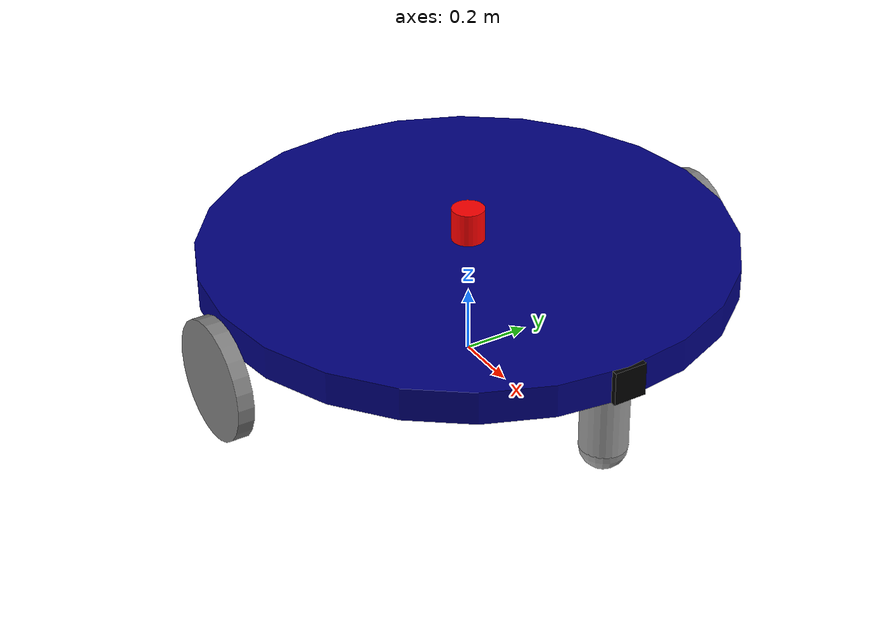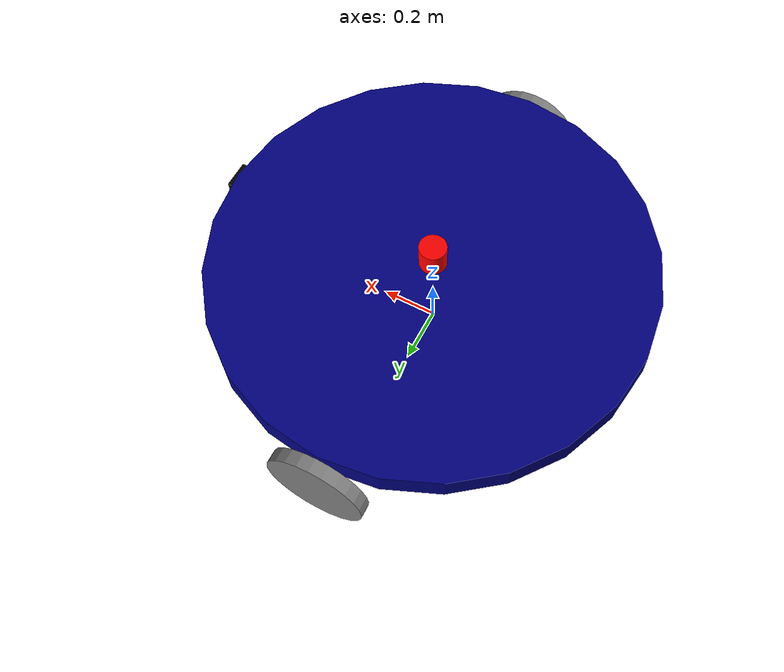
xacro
<?xml version="1.0"?>
<robot name="vanilla_bot" xmlns:xacro="http://www.ros.org/wiki/xacro">

    <xacro:include filename="$(find robot_descriptions)/urdf/common_parameters.xacro" />
    <xacro:include filename="$(find robot_descriptions)/urdf/plugins/imu.xacro" />
    <xacro:include filename="$(find robot_descriptions)/urdf/plugins/camera.xacro" />
    <xacro:include filename="$(find robot_descriptions)/urdf/plugins/laser.xacro" />
    <xacro:include filename="$(find robot_descriptions)/urdf/plugins/diff_drive.xacro" />
    <xacro:include filename="vanilla_bot_base.xacro" />

</robot>

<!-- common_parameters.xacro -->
<robot xmlns:xacro="http://www.ros.org/wiki/xacro">

    <material name="Blue">
        <color rgba="0.0 0.0 0.5 1" />
    </material>

    <material name="Grey">
        <color rgba="0.5 0.5 0.5 1" />
    </material>

    <material name="Orange">
        <color rgba="1.0 0.5 0.0 1" />
    </material>

    <material name="Yellow">
        <color rgba="1.0 1.0 0.0 1" />
    </material>

    <material name="Red">
        <color rgba="1.0 0.0 0.0 1" />
    </material>

    <material name="Black">
        <color rgba="0.0 0.0 0.0 1" />
    </material>

    <xacro:macro name="box_inertia" params="mass length width height xyz rpy">
        <inertial>
            <origin xyz="${xyz}" rpy="${rpy}" />
            <mass value="${mass}" />
            <inertia ixx="${(mass/12) * (height * height + length * length)}" ixy="0" ixz="0"
                     iyy="${(mass/12) * (width * width + length * length)}" iyz="0"
                     izz="${(mass/12) * (width * width + height * height)}" />
        </inertial>
    </xacro:macro>

    <xacro:macro name="cylinder_inertia" params="mass radius height xyz rpy">
        <inertial>
            <origin xyz="${xyz}" rpy="${rpy}" />
            <mass value="${mass}" />
            <inertia ixx="${(mass/12) * (3 * radius * radius + height * height)}" ixy="0" ixz="0"
                     iyy="${(mass/12) * (3 * radius * radius + height * height)}" iyz="0"
                     izz="${(mass/2) * (radius * radius)}" />
        </inertial>
    </xacro:macro>

    <xacro:macro name="sphere_inertia" params="mass radius xyz rpy">
        <inertial>
            <origin xyz="${xyz}" rpy="${rpy}" />
            <mass value="${mass}" />
            <inertia ixx="${(2/5) * mass * radius * radius}" ixy="0" ixz="0"
                     iyy="${(2/5) * mass * radius * radius}" iyz="0"
                     izz="${(2/5) * mass * radius * radius}" />
        </inertial>
    </xacro:macro>

</robot>

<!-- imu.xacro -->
<robot xmlns:xacro="http://www.ros.org/wiki/xacro">

<!-- IMU will be located at the center of the robot -->

    <xacro:macro name="imu" params="link_name parent_link joint_name xyz rpy">
        <link name="${link_name}"/>

        <joint name="${joint_name}" type="fixed">
            <origin xyz="${xyz}" rpy="${rpy}"/>
            <parent link="${parent_link}"/>
            <child link="${link_name}"/>
        </joint>

        <gazebo reference="imu_link">
            <sensor name="imu_sensor" type="imu">
                <always_on>true</always_on>
                <update_rate>100</update_rate>
                <imu>
                    <angular_velocity>
                        <x>
                            <noise type="gaussian">
                                <mean>0.0</mean>
                                <stddev>2e-4</stddev>
                            </noise>
                        </x>

                        <y>
                            <noise type="gaussian">
                                <mean>0.0</mean>
                                <stddev>2e-4</stddev>
                            </noise>
                        </y>

                        <z>
                            <noise type="gaussian">
                                <mean>0.0</mean>
                                <stddev>2e-4</stddev>
                            </noise>
                        </z>

                    </angular_velocity>

                    <linear_acceleration>
                        <x>
                            <noise type="gaussian">
                                <mean>0.0</mean>
                                <stddev>1.7e-2</stddev>
                            </noise>
                        </x>

                        <y>
                            <noise type="gaussian">
                                <mean>0.0</mean>
                                <stddev>1.7e-2</stddev>
                            </noise>
                        </y>

                        <z>
                            <noise type="gaussian">
                                <mean>0.0</mean>
                                <stddev>1.7e-2</stddev>
                            </noise>
                        </z>
                    </linear_acceleration>
                </imu>

                <plugin name="bytes_imu" filename="libgazebo_ros_imu_sensor.so">
                    <ros>
                        <namespace>${link_name}</namespace>
                    </ros>
                    <initial_orientation_as_reference>false</initial_orientation_as_reference>
                </plugin>
            </sensor>
        </gazebo>

    </xacro:macro>
</robot>

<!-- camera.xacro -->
<robot xmlns:xacro="http://www.ros.org/wiki/xacro">

    <xacro:macro name="camera" params=" link_name parent_link joint_name
                                        camera_length camera_width camera_height mass
                                        xyz rpy">

        <link name="${link_name}">
            <visual>
                <origin xyz="0 0 0" rpy="0 0 0"/>
                <geometry>
                    <box size="${camera_length} ${camera_width} ${camera_height}"/>
                </geometry>
                <material name="Black"/>
            </visual>

            <collision>
                <origin xyz="0 0 0" rpy="0 0 0"/>
                <geometry>
                    <box size="${camera_length} ${camera_width} ${camera_height}"/>
                </geometry>
            </collision>

            <xacro:box_inertia mass="${mass}" length="${camera_length}" width="${camera_width}" height="${camera_height}"
                            xyz="0 0 0" rpy="0 0 0" />
        </link>

        <joint name="${joint_name}" type="fixed">
            <origin xyz="${xyz}" rpy="${rpy}"/>
            <parent link="${parent_link}"/>
            <child link="${link_name}"/>
        </joint>

        <gazebo reference="${link_name}">
            <material>Gazebo/Black</material>
            <sensor name="camera_sensor" type="camera">
                <pose> 0 0 0 0 0 0 </pose>
                <visualize>true</visualize>
                <update_rate>10</update_rate>
                <camera>
                    <horizontal_fov>1.089</horizontal_fov>
                    <image>
                        <format>R8G8B8</format>
                        <width>640</width>
                        <height>480</height>
                    </image>
                    <clip>
                        <near>0.05</near>
                        <far>8.0</far>
                    </clip>
                </camera>
                <plugin name="camera_controller" filename="libgazebo_ros_camera.so">
                    <frame_name>${link_name}</frame_name>
                </plugin>
            </sensor>
        </gazebo>
    </xacro:macro>
</robot>

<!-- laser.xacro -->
<robot xmlns:xacro="http://www.ros.org/wiki/xacro" >

    <xacro:macro name="laser" params=" link_name parent_link joint_name
                                        laser_length laser_radius mass
                                        xyz rpy">

        <link name="${link_name}">
            <visual>
                <origin xyz="0 0 ${-laser_length/2}" rpy="0 0 0"/>
                <geometry>
                    <cylinder radius="${laser_radius}" length="${laser_length}"/>
                </geometry>
                <material name="Red"/>
            </visual>

            <collision>
                <origin xyz="0 0 ${-laser_length/2}" rpy="0 0 0"/>
                <geometry>
                    <cylinder radius="${laser_radius}" length="${laser_length}"/>
                </geometry>
            </collision>

            <xacro:cylinder_inertia mass="${mass}" height="${laser_length}" radius="${laser_radius}"
                                    xyz="0 0 0" rpy="0 0 0" />

        </link>

        <joint name="${joint_name}" type="fixed">
            <origin xyz="${xyz}" rpy="${rpy}"/>
            <parent link="${parent_link}"/>
            <child link="${link_name}"/>
        </joint>

        <gazebo reference="${link_name}">
            <material>Gazebo/Red</material>
            <sensor name="laser_sensor" type="ray">
                <pose> 1 0 0 0 0 0 </pose>
                <visualize>true</visualize>
                <update_rate>10</update_rate>
                <ray>
                    <scan>
                        <horizontal>
                            <samples>360</samples>
                            <min_angle>-3.14</min_angle>
                            <max_angle>3.14</max_angle>
                        </horizontal>
                    </scan>
                    <range>
                        <min>0.3</min>
                        <max>5</max>
                    </range>
                </ray>
                <plugin name="laser_controller" filename="libgazebo_ros_ray_sensor.so">
                    <output_type>sensor_msgs/LaserScan</output_type>
                    <frame_name>${link_name}</frame_name>
                </plugin>
            </sensor>
        </gazebo>

    </xacro:macro>
</robot>

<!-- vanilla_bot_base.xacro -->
<robot xmlns:xacro="http://www.ros.org/wiki/xacro">

    <!-- Parameters for mobile base -->
    <xacro:property name="base_length" value ="0.1"/>
    <xacro:property name="base_radius" value ="0.8"/>

    <!-- Parameters for mobile base wheels -->
    <xacro:property name="wheel_radius" value ="0.18"/>
    <xacro:property name="wheel_length" value ="0.05"/>

    <!-- Parameters for mobile base caster wheels -->
    <xacro:property name="caster_wheel_radius" value ="0.07"/>
    <xacro:property name="caster_wheel_length" value ="${((base_length / 2) * 2)+(wheel_radius)}"/>

    <!--  Parameters for IMU -->
    <xacro:imu  link_name = "imu_link" parent_link = "base_link" joint_name = "imu_joint"
                xyz="0.0 0.0 ${base_length/2}" rpy="0.0 0.0 0.0" />

    <!--  Parameters for Camera -->
    <xacro:camera link_name = "camera_link" parent_link = "base_link" joint_name = "camera_joint"
                  camera_length = "0.02" camera_width = "0.1" camera_height = "${base_length}" mass = "0.01"
                  xyz = "${base_radius} 0 ${base_length/2}" rpy = "0 0 0" />

    <!--  Parameters for Laser Sensor -->
    <xacro:laser link_name = "laser_link" parent_link = "base_link" joint_name = "laser_joint"
                  laser_radius = "0.05" laser_length = "0.1" mass = "0.01"
                  xyz = "0 0 ${base_length + 0.1}" rpy = "0 0 0" /> <!-- Add laser_length to the xyz in int like 0.1 -->

    <!-- Parameters for Diff_drive Plugin -->
    <xacro:diff_drive left_joint_name = "base_left_wheel_joint" right_joint_name = "base_right_wheel_joint" robot_base_frame = "base_footprint"
                                        wheel_diameter = "${wheel_radius*2}" wheel_separation = "${base_radius*2}" />

<!-- ********************** Base footprint link and joint ********************** -->
    <link name="base_footprint"/>

    <joint name="base_joint" type="fixed">
        <origin xyz="0.0 0.0 ${caster_wheel_length}" rpy="0.0 0.0 0.0"/>
        <parent link="base_footprint"/>
        <child link="base_link"/>
    </joint>

<!-- ********************** Base link ********************** -->
    <link name="base_link">

        <visual>
            <origin xyz="0.0 0.0 ${(base_length / 2)}" rpy="0.0 0.0 0.0"/>
            <geometry>
                <cylinder radius="${base_radius}" length="${base_length}"/>
            </geometry>
            <material name="Blue"/>
        </visual>

        <collision>
            <origin xyz="0.0 0.0 ${(base_length / 2)}" rpy="0.0 0.0 0.0"/>
            <geometry>
                <cylinder radius="${base_radius}" length="${base_length}"/>
            </geometry>
        </collision>

        <xacro:cylinder_inertia mass="1.0" radius="${base_radius}" height="${base_length}"
                                    xyz="0 0 ${base_length/2}" rpy="0 0 ${pi / 2.0}" />
    </link>

    <gazebo reference="base_link">
        <material>Gazebo/Blue</material>
    </gazebo>

<!-- ********************** Wheel links and joints ********************** -->
    <xacro:macro name="wheel_link" params="prefix">
        <link name="${prefix}_wheel_link">

            <visual>
                <origin xyz="0 0 0" rpy="${pi / 2.0} 0 0" />
                <geometry>
                    <cylinder radius="${wheel_radius}" length="${wheel_length}"/>
                </geometry>
                <material name="Grey" />
            </visual>

            <collision>
                <origin xyz="0 0 0" rpy="${pi / 2.0} 0 0" />
                <geometry>
                    <cylinder radius="${wheel_radius}" length="${wheel_length}"/>
                </geometry>
            </collision>

            <xacro:cylinder_inertia mass="0.05" radius="${wheel_radius}" height="${wheel_length}"
                                    xyz="0 0 0" rpy="${pi / 2.0} 0 0" />
        </link>
    </xacro:macro>

    <!-- Right  -->
    <xacro:wheel_link prefix="right" />

    <joint name="base_right_wheel_joint" type="continuous">
        <origin xyz="0.0 ${(base_radius)+(wheel_length / 2)} ${-((base_length / 2) * 2)}"
                rpy="0.0 0.0 0.0"/>
        <parent link="base_link"/>
        <child link="right_wheel_link"/>
        <axis xyz="0.0 1 0.0"/>
    </joint>

    <gazebo reference="right_wheel_link">
        <material>Gazebo/Grey</material>
    </gazebo>

    <!-- Left -->
    <xacro:wheel_link prefix="left" />

    <joint name="base_left_wheel_joint" type="continuous">
        <origin xyz="0.0 ${-((base_radius)+(wheel_length / 2))} ${-((base_length / 2) * 2)}"
                rpy="0.0 0.0 0.0"/>
        <parent link="base_link"/>
        <child link="left_wheel_link"/>
        <axis xyz="0.0 1 0.0"/>
    </joint>

    <gazebo reference="left_wheel_link">
        <material>Gazebo/Grey</material>
    </gazebo>

<!-- ********************** caster wheel links and joints ********************** -->
    <xacro:macro name="caster_wheel_link" params="prefix">
        <link name="${prefix}_caster_wheel_link">

            <visual name="caster_wheel_handel">
                <origin xyz="0.0 0.0 ${-((caster_wheel_length-caster_wheel_radius)/2)}"
                        rpy="0.0 0.0 0.0"/>
                <geometry>
                    <cylinder radius="${caster_wheel_radius}" length="${caster_wheel_length - caster_wheel_radius}"/>
                </geometry>
            </visual>

            <visual name="caster_wheel">
                <origin xyz="0.0 0.0 ${-((caster_wheel_length/2)*2)+caster_wheel_radius}"
                        rpy="0.0 0.0 0.0"/>
                <geometry>
                    <sphere radius="${caster_wheel_radius}"/>
                </geometry>
            </visual>

            <collision>
                <origin xyz="0.0 0.0 ${-((caster_wheel_length)/2)}" rpy="0.0 0.0 0.0"/>
                <geometry>
                    <cylinder radius="${caster_wheel_radius}" length="${caster_wheel_length}"/>
                </geometry>
            </collision>

            <xacro:cylinder_inertia mass="0.04" radius="${caster_wheel_radius}" height="${caster_wheel_length}"
                                    xyz="0 0 ${-((caster_wheel_length-caster_wheel_radius)/2)}"
                                    rpy="0 0 0" />

        </link>
    </xacro:macro>

    <!-- Front -->
    <xacro:caster_wheel_link prefix="front" />

    <joint name="front_caster_wheel_joint" type="fixed">
        <origin xyz="${base_radius-0.1} 0.0 0.0" rpy="0.0 0.0 0.0"/>
        <parent link="base_link"/>
        <child link="front_caster_wheel_link"/>
    </joint>

    <gazebo reference="front_caster_wheel_link">
        <material>Gazebo/Grey</material>
        <mu1 value="0.1" />
        <mu2 value="0.1" />
    </gazebo>

    <!-- Back -->
    <xacro:caster_wheel_link prefix="back" />

    <joint name="back_caster_wheel_joint" type="fixed">
        <origin xyz="${-(base_radius-0.1)} 0.0 0.0" rpy="0.0 0.0 0.0"/>
        <parent link="base_link"/>
        <child link="back_caster_wheel_link"/>
    </joint>

    <gazebo reference="back_caster_wheel_link">
        <material>Gazebo/Grey</material>
        <mu1 value="0.1" />
        <mu2 value="0.1" />
    </gazebo>

</robot>
